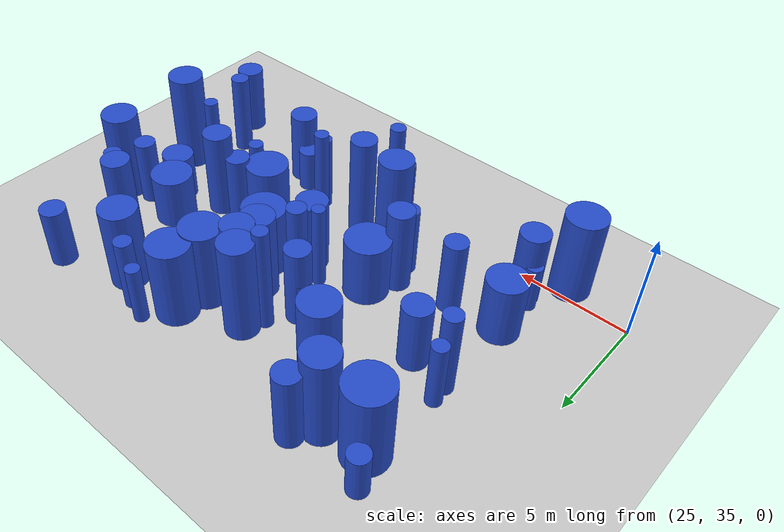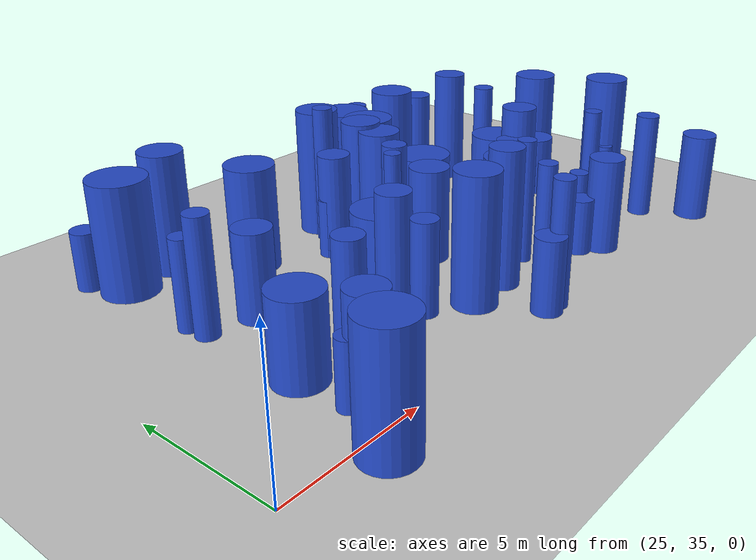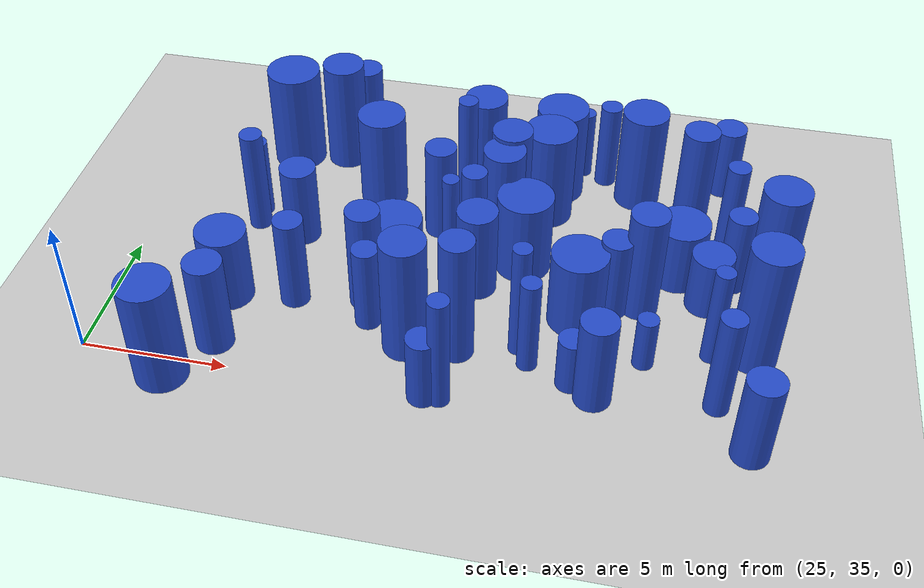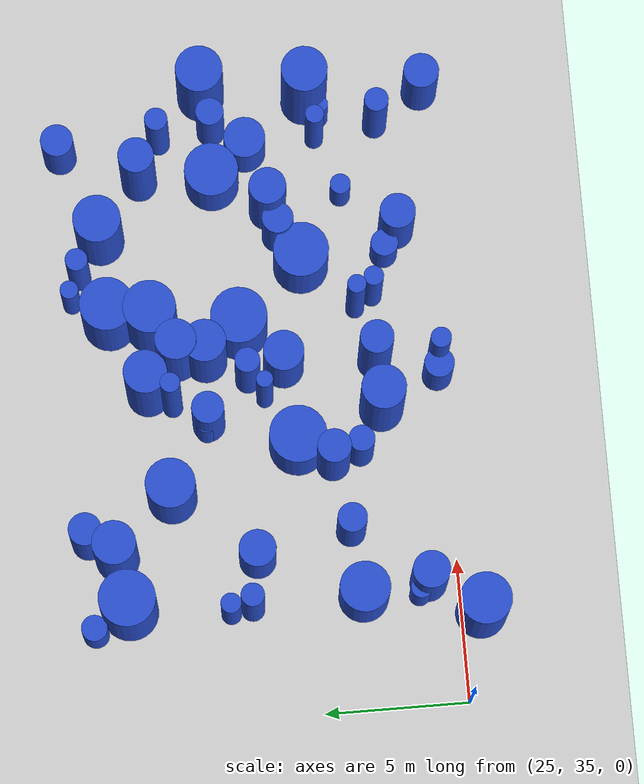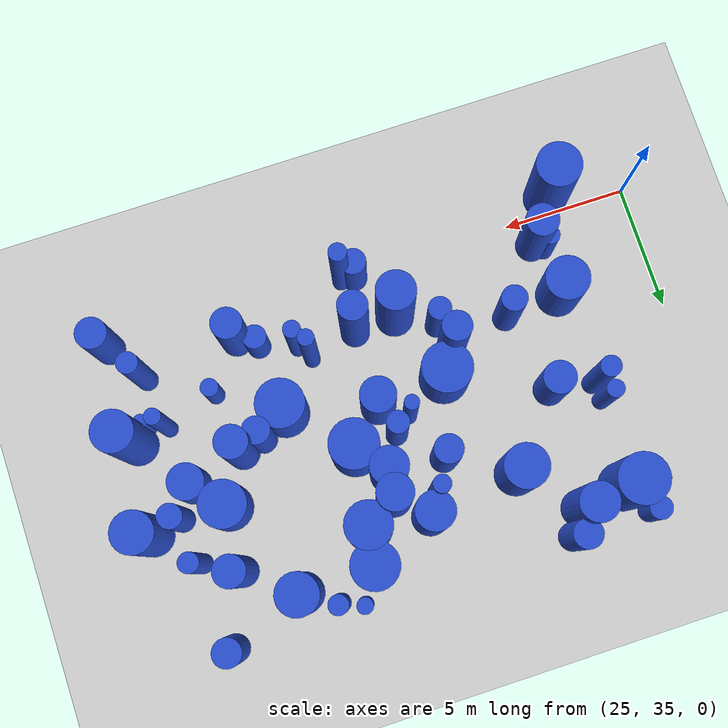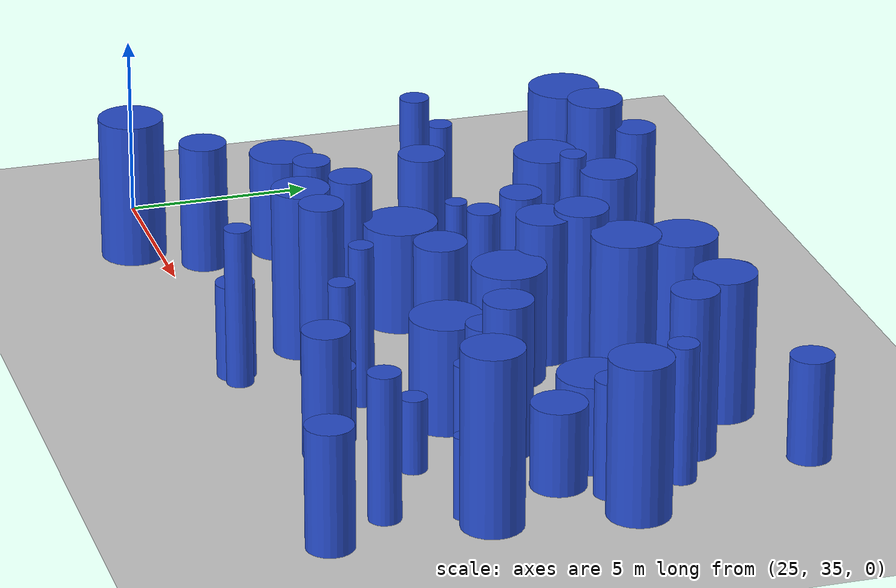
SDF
<sdf version="1.6">
 <world name="default">
  <model name="ground_plane">
   <static>1</static>
   <link name="link">
    <collision name="collision">
     <geometry><plane><normal>0 0 1</normal><size>100 100</size></plane></geometry>
     <surface><friction><ode><mu>100</mu><mu2>50</mu2></ode></friction></surface>
    </collision>
    <visual name="visual">
     <cast_shadows>0</cast_shadows>
     <geometry><plane><normal>0 0 1</normal><size>100 100</size></plane></geometry>
     <material>
      <script><uri>file://media/materials/scripts/gazebo.material</uri><name>Gazebo/Grey</name></script>
     </material>
    </visual>
   </link>
  </model>
  <model name="16">
   <static>0</static>
   <link name="link">
    <inertial>
     <mass>2</mass>
     <inertia><ixx>1.97388</ixx><ixy>0</ixy><ixz>0</ixz><iyy>1.97388</iyy><iyz>0</iyz><izz>0.383371</izz></inertia>
    </inertial>
    <collision name="collision">
     <geometry><cylinder><length>3.27004</length><radius>0.619169</radius></cylinder></geometry>
     <surface><contact><collide_without_contact>1</collide_without_contact></contact></surface>
    </collision>
    <visual name="visual">
     <geometry><cylinder><length>3.27004</length><radius>0.619169</radius></cylinder></geometry>
     <material>
      <script><uri>file://media/materials/scripts/gazebo.material</uri><name>Gazebo/Blue</name></script>
     </material>
    </visual>
    <gravity>0</gravity>
   </link>
   <pose>46.7633 34.854 1.63502 0 -0 0</pose>
  </model>
  <model name="33">
   <static>0</static>
   <link name="link">
    <inertial>
     <mass>2</mass>
     <inertia><ixx>3.32594</ixx><ixy>0</ixy><ixz>0</ixz><iyy>3.32594</iyy><iyz>0</iyz><izz>0.675286</izz></inertia>
    </inertial>
    <collision name="collision">
     <geometry><cylinder><length>4.23436</length><radius>0.821758</radius></cylinder></geometry>
     <surface><contact><collide_without_contact>1</collide_without_contact></contact></surface>
    </collision>
    <visual name="visual">
     <geometry><cylinder><length>4.23436</length><radius>0.821758</radius></cylinder></geometry>
     <material>
      <script><uri>file://media/materials/scripts/gazebo.material</uri><name>Gazebo/Blue</name></script>
     </material>
    </visual>
    <gravity>0</gravity>
   </link>
   <pose>47.2032 42.5605 2.11718 0 -0 0</pose>
  </model>
  <model name="44">
   <static>0</static>
   <link name="link">
    <inertial>
     <mass>2</mass>
     <inertia><ixx>4.17462</ixx><ixy>0</ixy><ixz>0</ixz><iyy>4.17462</iyy><iyz>0</iyz><izz>0.119229</izz></inertia>
    </inertial>
    <collision name="collision">
     <geometry><cylinder><length>4.96891</length><radius>0.345295</radius></cylinder></geometry>
     <surface><contact><collide_without_contact>1</collide_without_contact></contact></surface>
    </collision>
    <visual name="visual">
     <geometry><cylinder><length>4.96891</length><radius>0.345295</radius></cylinder></geometry>
     <material>
      <script><uri>file://media/materials/scripts/gazebo.material</uri><name>Gazebo/Blue</name></script>
     </material>
    </visual>
    <gravity>0</gravity>
   </link>
   <pose>36.1613 44.4005 2.48445 0 -0 0</pose>
  </model>
  <model name="56">
   <static>0</static>
   <link name="link">
    <inertial>
     <mass>2</mass>
     <inertia>
      <ixx>0.820719</ixx>
      <ixy>0</ixy>
      <ixz>0</ixz>
      <iyy>0.820719</iyy>
      <iyz>0</iyz>
      <izz>0.154265</izz>
     </inertia>
    </inertial>
    <collision name="collision">
     <geometry><cylinder><length>2.11223</length><radius>0.392766</radius></cylinder></geometry>
     <surface><contact><collide_without_contact>1</collide_without_contact></contact></surface>
    </collision>
    <visual name="visual">
     <geometry><cylinder><length>2.11223</length><radius>0.392766</radius></cylinder></geometry>
     <material>
      <script><uri>file://media/materials/scripts/gazebo.material</uri><name>Gazebo/Blue</name></script>
     </material>
    </visual>
    <gravity>0</gravity>
   </link>
   <pose>35.2204 43.2712 1.05612 0 -0 0</pose>
  </model>
  <model name="57">
   <static>0</static>
   <link name="link">
    <inertial>
     <mass>2</mass>
     <inertia><ixx>1.80639</ixx><ixy>0</ixy><ixz>0</ixz><iyy>1.80639</iyy><iyz>0</iyz><izz>0.301855</izz></inertia>
    </inertial>
    <collision name="collision">
     <geometry><cylinder><length>3.15163</length><radius>0.549413</radius></cylinder></geometry>
     <surface><contact><collide_without_contact>1</collide_without_contact></contact></surface>
    </collision>
    <visual name="visual">
     <geometry><cylinder><length>3.15163</length><radius>0.549413</radius></cylinder></geometry>
     <material>
      <script><uri>file://media/materials/scripts/gazebo.material</uri><name>Gazebo/Blue</name></script>
     </material>
    </visual>
    <gravity>0</gravity>
   </link>
   <pose>41.9771 40.2594 1.57581 0 -0 0</pose>
  </model>
  <model name="69">
   <static>0</static>
   <link name="link">
    <inertial>
     <mass>2</mass>
     <inertia><ixx>1.84567</ixx><ixy>0</ixy><ixz>0</ixz><iyy>1.84567</iyy><iyz>0</iyz><izz>0.999192</izz></inertia>
    </inertial>
    <collision name="collision">
     <geometry><cylinder><length>2.8419</length><radius>0.999596</radius></cylinder></geometry>
     <surface><contact><collide_without_contact>1</collide_without_contact></contact></surface>
    </collision>
    <visual name="visual">
     <geometry><cylinder><length>2.8419</length><radius>0.999596</radius></cylinder></geometry>
     <material>
      <script><uri>file://media/materials/scripts/gazebo.material</uri><name>Gazebo/Blue</name></script>
     </material>
    </visual>
    <gravity>0</gravity>
   </link>
   <pose>34.4167 40.1677 1.42095 0 -0 0</pose>
  </model>
  <model name="70">
   <static>0</static>
   <link name="link">
    <inertial>
     <mass>2</mass>
     <inertia><ixx>3.11179</ixx><ixy>0</ixy><ixz>0</ixz><iyy>3.11179</iyy><iyz>0</iyz><izz>0.421659</izz></inertia>
    </inertial>
    <collision name="collision">
     <geometry><cylinder><length>4.17202</length><radius>0.649353</radius></cylinder></geometry>
     <surface><contact><collide_without_contact>1</collide_without_contact></contact></surface>
    </collision>
    <visual name="visual">
     <geometry><cylinder><length>4.17202</length><radius>0.649353</radius></cylinder></geometry>
     <material>
      <script><uri>file://media/materials/scripts/gazebo.material</uri><name>Gazebo/Blue</name></script>
     </material>
    </visual>
    <gravity>0</gravity>
   </link>
   <pose>42.8961 40.535 2.08601 0 -0 0</pose>
  </model>
  <model name="91">
   <static>0</static>
   <link name="link">
    <inertial>
     <mass>2</mass>
     <inertia><ixx>3.82607</ixx><ixy>0</ixy><ixz>0</ixz><iyy>3.82607</iyy><iyz>0</iyz><izz>0.596491</izz></inertia>
    </inertial>
    <collision name="collision">
     <geometry><cylinder><length>4.60076</length><radius>0.772328</radius></cylinder></geometry>
     <surface><contact><collide_without_contact>1</collide_without_contact></contact></surface>
    </collision>
    <visual name="visual">
     <geometry><cylinder><length>4.60076</length><radius>0.772328</radius></cylinder></geometry>
     <material>
      <script><uri>file://media/materials/scripts/gazebo.material</uri><name>Gazebo/Blue</name></script>
     </material>
    </visual>
    <gravity>0</gravity>
   </link>
   <pose>35.4947 37.1578 2.30038 0 -0 0</pose>
  </model>
  <model name="101">
   <static>0</static>
   <link name="link">
    <inertial>
     <mass>2</mass>
     <inertia><ixx>2.01847</ixx><ixy>0</ixy><ixz>0</ixz><iyy>2.01847</iyy><iyz>0</iyz><izz>0.154178</izz></inertia>
    </inertial>
    <collision name="collision">
     <geometry><cylinder><length>3.41296</length><radius>0.392655</radius></cylinder></geometry>
     <surface><contact><collide_without_contact>1</collide_without_contact></contact></surface>
    </collision>
    <visual name="visual">
     <geometry><cylinder><length>3.41296</length><radius>0.392655</radius></cylinder></geometry>
     <material>
      <script><uri>file://media/materials/scripts/gazebo.material</uri><name>Gazebo/Blue</name></script>
     </material>
    </visual>
    <gravity>0</gravity>
   </link>
   <pose>41.0047 47.2972 1.70648 0 -0 0</pose>
  </model>
  <model name="139">
   <static>0</static>
   <link name="link">
    <inertial>
     <mass>2</mass>
     <inertia><ixx>1.67274</ixx><ixy>0</ixy><ixz>0</ixz><iyy>1.67274</iyy><iyz>0</iyz><izz>0.124676</izz></inertia>
    </inertial>
    <collision name="collision">
     <geometry><cylinder><length>3.10844</length><radius>0.353094</radius></cylinder></geometry>
     <surface><contact><collide_without_contact>1</collide_without_contact></contact></surface>
    </collision>
    <visual name="visual">
     <geometry><cylinder><length>3.10844</length><radius>0.353094</radius></cylinder></geometry>
     <material>
      <script><uri>file://media/materials/scripts/gazebo.material</uri><name>Gazebo/Blue</name></script>
     </material>
    </visual>
    <gravity>0</gravity>
   </link>
   <pose>28.732 42.9388 1.55422 0 -0 0</pose>
  </model>
  <model name="157">
   <static>0</static>
   <link name="link">
    <inertial>
     <mass>2</mass>
     <inertia><ixx>2.20597</ixx><ixy>0</ixy><ixz>0</ixz><iyy>2.20597</iyy><iyz>0</iyz><izz>0.263443</izz></inertia>
    </inertial>
    <collision name="collision">
     <geometry><cylinder><length>3.52782</length><radius>0.513267</radius></cylinder></geometry>
     <surface><contact><collide_without_contact>1</collide_without_contact></contact></surface>
    </collision>
    <visual name="visual">
     <geometry><cylinder><length>3.52782</length><radius>0.513267</radius></cylinder></geometry>
     <material>
      <script><uri>file://media/materials/scripts/gazebo.material</uri><name>Gazebo/Blue</name></script>
     </material>
    </visual>
    <gravity>0</gravity>
   </link>
   <pose>31.2714 38.576 1.76391 0 -0 0</pose>
  </model>
  <model name="164">
   <static>0</static>
   <link name="link">
    <inertial>
     <mass>2</mass>
     <inertia>
      <ixx>0.892285</ixx>
      <ixy>0</ixy>
      <ixz>0</ixz>
      <iyy>0.892285</iyy>
      <iyz>0</iyz>
      <izz>0.135606</izz>
     </inertia>
    </inertial>
    <collision name="collision">
     <geometry><cylinder><length>2.22416</length><radius>0.368248</radius></cylinder></geometry>
     <surface><contact><collide_without_contact>1</collide_without_contact></contact></surface>
    </collision>
    <visual name="visual">
     <geometry><cylinder><length>2.22416</length><radius>0.368248</radius></cylinder></geometry>
     <material>
      <script><uri>file://media/materials/scripts/gazebo.material</uri><name>Gazebo/Blue</name></script>
     </material>
    </visual>
    <gravity>0</gravity>
   </link>
   <pose>28.8637 36.3832 1.11208 0 -0 0</pose>
  </model>
  <model name="167">
   <static>0</static>
   <link name="link">
    <inertial>
     <mass>2</mass>
     <inertia><ixx>2.17863</ixx><ixy>0</ixy><ixz>0</ixz><iyy>2.17863</iyy><iyz>0</iyz><izz>0.500436</izz></inertia>
    </inertial>
    <collision name="collision">
     <geometry><cylinder><length>3.40154</length><radius>0.707415</radius></cylinder></geometry>
     <surface><contact><collide_without_contact>1</collide_without_contact></contact></surface>
    </collision>
    <visual name="visual">
     <geometry><cylinder><length>3.40154</length><radius>0.707415</radius></cylinder></geometry>
     <material>
      <script><uri>file://media/materials/scripts/gazebo.material</uri><name>Gazebo/Blue</name></script>
     </material>
    </visual>
    <gravity>0</gravity>
   </link>
   <pose>37.2531 40.4364 1.70077 0 -0 0</pose>
  </model>
  <model name="168">
   <static>0</static>
   <link name="link">
    <inertial>
     <mass>2</mass>
     <inertia><ixx>2.95687</ixx><ixy>0</ixy><ixz>0</ixz><iyy>2.95687</iyy><iyz>0</iyz><izz>0.556432</izz></inertia>
    </inertial>
    <collision name="collision">
     <geometry><cylinder><length>4.00898</length><radius>0.745944</radius></cylinder></geometry>
     <surface><contact><collide_without_contact>1</collide_without_contact></contact></surface>
    </collision>
    <visual name="visual">
     <geometry><cylinder><length>4.00898</length><radius>0.745944</radius></cylinder></geometry>
     <material>
      <script><uri>file://media/materials/scripts/gazebo.material</uri><name>Gazebo/Blue</name></script>
     </material>
    </visual>
    <gravity>0</gravity>
   </link>
   <pose>37.7024 43.1218 2.00449 0 -0 0</pose>
  </model>
  <model name="171">
   <static>0</static>
   <link name="link">
    <inertial>
     <mass>2</mass>
     <inertia>
      <ixx>2.71791</ixx>
      <ixy>0</ixy>
      <ixz>0</ixz>
      <iyy>2.71791</iyy>
      <iyz>0</iyz>
      <izz>0.0859131</izz>
     </inertia>
    </inertial>
    <collision name="collision">
     <geometry><cylinder><length>4.00621</length><radius>0.293109</radius></cylinder></geometry>
     <surface><contact><collide_without_contact>1</collide_without_contact></contact></surface>
    </collision>
    <visual name="visual">
     <geometry><cylinder><length>4.00621</length><radius>0.293109</radius></cylinder></geometry>
     <material>
      <script><uri>file://media/materials/scripts/gazebo.material</uri><name>Gazebo/Blue</name></script>
     </material>
    </visual>
    <gravity>0</gravity>
   </link>
   <pose>36.199 41.1788 2.0031 0 -0 0</pose>
  </model>
  <model name="176">
   <static>0</static>
   <link name="link">
    <inertial>
     <mass>2</mass>
     <inertia><ixx>4.07604</ixx><ixy>0</ixy><ixz>0</ixz><iyy>4.07604</iyy><iyz>0</iyz><izz>0.341862</izz></inertia>
    </inertial>
    <collision name="collision">
     <geometry><cylinder><length>4.84052</length><radius>0.58469</radius></cylinder></geometry>
     <surface><contact><collide_without_contact>1</collide_without_contact></contact></surface>
    </collision>
    <visual name="visual">
     <geometry><cylinder><length>4.84052</length><radius>0.58469</radius></cylinder></geometry>
     <material>
      <script><uri>file://media/materials/scripts/gazebo.material</uri><name>Gazebo/Blue</name></script>
     </material>
    </visual>
    <gravity>0</gravity>
   </link>
   <pose>37.1938 37.2575 2.42026 0 -0 0</pose>
  </model>
  <model name="194">
   <static>0</static>
   <link name="link">
    <inertial>
     <mass>2</mass>
     <inertia><ixx>2.29737</ixx><ixy>0</ixy><ixz>0</ixz><iyy>2.29737</iyy><iyz>0</iyz><izz>0.327553</izz></inertia>
    </inertial>
    <collision name="collision">
     <geometry><cylinder><length>3.57792</length><radius>0.572323</radius></cylinder></geometry>
     <surface><contact><collide_without_contact>1</collide_without_contact></contact></surface>
    </collision>
    <visual name="visual">
     <geometry><cylinder><length>3.57792</length><radius>0.572323</radius></cylinder></geometry>
     <material>
      <script><uri>file://media/materials/scripts/gazebo.material</uri><name>Gazebo/Blue</name></script>
     </material>
    </visual>
    <gravity>0</gravity>
   </link>
   <pose>31.5987 47.6939 1.78896 0 -0 0</pose>
  </model>
  <model name="202">
   <static>0</static>
   <link name="link">
    <inertial>
     <mass>2</mass>
     <inertia><ixx>3.3605</ixx><ixy>0</ixy><ixz>0</ixz><iyy>3.3605</iyy><iyz>0</iyz><izz>0.579654</izz></inertia>
    </inertial>
    <collision name="collision">
     <geometry><cylinder><length>4.29233</length><radius>0.76135</radius></cylinder></geometry>
     <surface><contact><collide_without_contact>1</collide_without_contact></contact></surface>
    </collision>
    <visual name="visual">
     <geometry><cylinder><length>4.29233</length><radius>0.76135</radius></cylinder></geometry>
     <material>
      <script><uri>file://media/materials/scripts/gazebo.material</uri><name>Gazebo/Blue</name></script>
     </material>
    </visual>
    <gravity>0</gravity>
   </link>
   <pose>30.9537 46.7301 2.14616 0 -0 0</pose>
  </model>
  <model name="210">
   <static>0</static>
   <link name="link">
    <inertial>
     <mass>2</mass>
     <inertia>
      <ixx>0.800306</ixx>
      <ixy>0</ixy>
      <ixz>0</ixz>
      <iyy>0.800306</iyy>
      <iyz>0</iyz>
      <izz>0.228553</izz>
     </inertia>
    </inertial>
    <collision name="collision">
     <geometry><cylinder><length>2.02884</length><radius>0.478072</radius></cylinder></geometry>
     <surface><contact><collide_without_contact>1</collide_without_contact></contact></surface>
    </collision>
    <visual name="visual">
     <geometry><cylinder><length>2.02884</length><radius>0.478072</radius></cylinder></geometry>
     <material>
      <script><uri>file://media/materials/scripts/gazebo.material</uri><name>Gazebo/Blue</name></script>
     </material>
    </visual>
    <gravity>0</gravity>
   </link>
   <pose>41.036 36.6052 1.01442 0 -0 0</pose>
  </model>
  <model name="224">
   <static>0</static>
   <link name="link">
    <inertial>
     <mass>2</mass>
     <inertia><ixx>3.32048</ixx><ixy>0</ixy><ixz>0</ixz><iyy>3.32048</iyy><iyz>0</iyz><izz>0.105531</izz></inertia>
    </inertial>
    <collision name="collision">
     <geometry><cylinder><length>4.4279</length><radius>0.324856</radius></cylinder></geometry>
     <surface><contact><collide_without_contact>1</collide_without_contact></contact></surface>
    </collision>
    <visual name="visual">
     <geometry><cylinder><length>4.4279</length><radius>0.324856</radius></cylinder></geometry>
     <material>
      <script><uri>file://media/materials/scripts/gazebo.material</uri><name>Gazebo/Blue</name></script>
     </material>
    </visual>
    <gravity>0</gravity>
   </link>
   <pose>39.162 37.7705 2.21395 0 -0 0</pose>
  </model>
  <model name="225">
   <static>0</static>
   <link name="link">
    <inertial>
     <mass>2</mass>
     <inertia><ixx>1.9256</ixx><ixy>0</ixy><ixz>0</ixz><iyy>1.9256</iyy><iyz>0</iyz><izz>0.930774</izz></inertia>
    </inertial>
    <collision name="collision">
     <geometry><cylinder><length>2.95994</length><radius>0.964766</radius></cylinder></geometry>
     <surface><contact><collide_without_contact>1</collide_without_contact></contact></surface>
    </collision>
    <visual name="visual">
     <geometry><cylinder><length>2.95994</length><radius>0.964766</radius></cylinder></geometry>
     <material>
      <script><uri>file://media/materials/scripts/gazebo.material</uri><name>Gazebo/Blue</name></script>
     </material>
    </visual>
    <gravity>0</gravity>
   </link>
   <pose>40.8355 39.5384 1.47997 0 -0 0</pose>
  </model>
  <model name="226">
   <static>0</static>
   <link name="link">
    <inertial>
     <mass>2</mass>
     <inertia><ixx>3.87629</ixx><ixy>0</ixy><ixz>0</ixz><iyy>3.87629</iyy><iyz>0</iyz><izz>0.569472</izz></inertia>
    </inertial>
    <collision name="collision">
     <geometry><cylinder><length>4.64213</length><radius>0.754633</radius></cylinder></geometry>
     <surface><contact><collide_without_contact>1</collide_without_contact></contact></surface>
    </collision>
    <visual name="visual">
     <geometry><cylinder><length>4.64213</length><radius>0.754633</radius></cylinder></geometry>
     <material>
      <script><uri>file://media/materials/scripts/gazebo.material</uri><name>Gazebo/Blue</name></script>
     </material>
    </visual>
    <gravity>0</gravity>
   </link>
   <pose>36.6684 45.216 2.32106 0 -0 0</pose>
  </model>
  <model name="235">
   <static>0</static>
   <link name="link">
    <inertial>
     <mass>2</mass>
     <inertia><ixx>2.77617</ixx><ixy>0</ixy><ixz>0</ixz><iyy>2.77617</iyy><iyz>0</iyz><izz>0.166217</izz></inertia>
    </inertial>
    <collision name="collision">
     <geometry><cylinder><length>4.01975</length><radius>0.407697</radius></cylinder></geometry>
     <surface><contact><collide_without_contact>1</collide_without_contact></contact></surface>
    </collision>
    <visual name="visual">
     <geometry><cylinder><length>4.01975</length><radius>0.407697</radius></cylinder></geometry>
     <material>
      <script><uri>file://media/materials/scripts/gazebo.material</uri><name>Gazebo/Blue</name></script>
     </material>
    </visual>
    <gravity>0</gravity>
   </link>
   <pose>28.8356 42.183 2.00987 0 -0 0</pose>
  </model>
  <model name="238">
   <static>0</static>
   <link name="link">
    <inertial>
     <mass>2</mass>
     <inertia><ixx>1.75919</ixx><ixy>0</ixy><ixz>0</ixz><iyy>1.75919</iyy><iyz>0</iyz><izz>0.240714</izz></inertia>
    </inertial>
    <collision name="collision">
     <geometry><cylinder><length>3.13576</length><radius>0.490626</radius></cylinder></geometry>
     <surface><contact><collide_without_contact>1</collide_without_contact></contact></surface>
    </collision>
    <visual name="visual">
     <geometry><cylinder><length>3.13576</length><radius>0.490626</radius></cylinder></geometry>
     <material>
      <script><uri>file://media/materials/scripts/gazebo.material</uri><name>Gazebo/Blue</name></script>
     </material>
    </visual>
    <gravity>0</gravity>
   </link>
   <pose>45.9366 42.3071 1.56788 0 -0 0</pose>
  </model>
  <model name="248">
   <static>0</static>
   <link name="link">
    <inertial>
     <mass>2</mass>
     <inertia><ixx>1.27917</ixx><ixy>0</ixy><ixz>0</ixz><iyy>1.27917</iyy><iyz>0</iyz><izz>0.271795</izz></inertia>
    </inertial>
    <collision name="collision">
     <geometry><cylinder><length>2.61909</length><radius>0.521339</radius></cylinder></geometry>
     <surface><contact><collide_without_contact>1</collide_without_contact></contact></surface>
    </collision>
    <visual name="visual">
     <geometry><cylinder><length>2.61909</length><radius>0.521339</radius></cylinder></geometry>
     <material>
      <script><uri>file://media/materials/scripts/gazebo.material</uri><name>Gazebo/Blue</name></script>
     </material>
    </visual>
    <gravity>0</gravity>
   </link>
   <pose>36.5397 35.1037 1.30954 0 -0 0</pose>
  </model>
  <model name="259">
   <static>0</static>
   <link name="link">
    <inertial>
     <mass>2</mass>
     <inertia><ixx>3.12811</ixx><ixy>0</ixy><ixz>0</ixz><iyy>3.12811</iyy><iyz>0</iyz><izz>0.971515</izz></inertia>
    </inertial>
    <collision name="collision">
     <geometry><cylinder><length>3.98172</length><radius>0.985654</radius></cylinder></geometry>
     <surface><contact><collide_without_contact>1</collide_without_contact></contact></surface>
    </collision>
    <visual name="visual">
     <geometry><cylinder><length>3.98172</length><radius>0.985654</radius></cylinder></geometry>
     <material>
      <script><uri>file://media/materials/scripts/gazebo.material</uri><name>Gazebo/Blue</name></script>
     </material>
    </visual>
    <gravity>0</gravity>
   </link>
   <pose>29.0812 46.433 1.99086 0 -0 0</pose>
  </model>
  <model name="275">
   <static>0</static>
   <link name="link">
    <inertial>
     <mass>2</mass>
     <inertia><ixx>1.41632</ixx><ixy>0</ixy><ixz>0</ixz><iyy>1.41632</iyy><iyz>0</iyz><izz>0.892011</izz></inertia>
    </inertial>
    <collision name="collision">
     <geometry><cylinder><length>2.41286</length><radius>0.944463</radius></cylinder></geometry>
     <surface><contact><collide_without_contact>1</collide_without_contact></contact></surface>
    </collision>
    <visual name="visual">
     <geometry><cylinder><length>2.41286</length><radius>0.944463</radius></cylinder></geometry>
     <material>
      <script><uri>file://media/materials/scripts/gazebo.material</uri><name>Gazebo/Blue</name></script>
     </material>
    </visual>
    <gravity>0</gravity>
   </link>
   <pose>44.0452 42.4086 1.20643 0 -0 0</pose>
  </model>
  <model name="289">
   <static>0</static>
   <link name="link">
    <inertial>
     <mass>2</mass>
     <inertia><ixx>2.37996</ixx><ixy>0</ixy><ixz>0</ixz><iyy>2.37996</iyy><iyz>0</iyz><izz>0.161647</izz></inertia>
    </inertial>
    <collision name="collision">
     <geometry><cylinder><length>3.71414</length><radius>0.402054</radius></cylinder></geometry>
     <surface><contact><collide_without_contact>1</collide_without_contact></contact></surface>
    </collision>
    <visual name="visual">
     <geometry><cylinder><length>3.71414</length><radius>0.402054</radius></cylinder></geometry>
     <material>
      <script><uri>file://media/materials/scripts/gazebo.material</uri><name>Gazebo/Blue</name></script>
     </material>
    </visual>
    <gravity>0</gravity>
   </link>
   <pose>45.6722 44.1807 1.85707 0 -0 0</pose>
  </model>
  <model name="291">
   <static>0</static>
   <link name="link">
    <inertial>
     <mass>2</mass>
     <inertia><ixx>2.84102</ixx><ixy>0</ixy><ixz>0</ixz><iyy>2.84102</iyy><iyz>0</iyz><izz>0.848281</izz></inertia>
    </inertial>
    <collision name="collision">
     <geometry><cylinder><length>3.80805</length><radius>0.921022</radius></cylinder></geometry>
     <surface><contact><collide_without_contact>1</collide_without_contact></contact></surface>
    </collision>
    <visual name="visual">
     <geometry><cylinder><length>3.80805</length><radius>0.921022</radius></cylinder></geometry>
     <material>
      <script><uri>file://media/materials/scripts/gazebo.material</uri><name>Gazebo/Blue</name></script>
     </material>
    </visual>
    <gravity>0</gravity>
   </link>
   <pose>39.0799 44.9146 1.90403 0 -0 0</pose>
  </model>
  <model name="308">
   <static>0</static>
   <link name="link">
    <inertial>
     <mass>2</mass>
     <inertia><ixx>1.77629</ixx><ixy>0</ixy><ixz>0</ixz><iyy>1.77629</iyy><iyz>0</iyz><izz>0.769397</izz></inertia>
    </inertial>
    <collision name="collision">
     <geometry><cylinder><length>2.88956</length><radius>0.877153</radius></cylinder></geometry>
     <surface><contact><collide_without_contact>1</collide_without_contact></contact></surface>
    </collision>
    <visual name="visual">
     <geometry><cylinder><length>2.88956</length><radius>0.877153</radius></cylinder></geometry>
     <material>
      <script><uri>file://media/materials/scripts/gazebo.material</uri><name>Gazebo/Blue</name></script>
     </material>
    </visual>
    <gravity>0</gravity>
   </link>
   <pose>28.9558 38.3284 1.44478 0 -0 0</pose>
  </model>
  <model name="310">
   <static>0</static>
   <link name="link">
    <inertial>
     <mass>2</mass>
     <inertia><ixx>2.16416</ixx><ixy>0</ixy><ixz>0</ixz><iyy>2.16416</iyy><iyz>0</iyz><izz>0.384762</izz></inertia>
    </inertial>
    <collision name="collision">
     <geometry><cylinder><length>3.43957</length><radius>0.620292</radius></cylinder></geometry>
     <surface><contact><collide_without_contact>1</collide_without_contact></contact></surface>
    </collision>
    <visual name="visual">
     <geometry><cylinder><length>3.43957</length><radius>0.620292</radius></cylinder></geometry>
     <material>
      <script><uri>file://media/materials/scripts/gazebo.material</uri><name>Gazebo/Blue</name></script>
     </material>
    </visual>
    <gravity>0</gravity>
   </link>
   <pose>41.8162 36.11 1.71979 0 -0 0</pose>
  </model>
  <model name="313">
   <static>0</static>
   <link name="link">
    <inertial>
     <mass>2</mass>
     <inertia><ixx>1.85579</ixx><ixy>0</ixy><ixz>0</ixz><iyy>1.85579</iyy><iyz>0</iyz><izz>0.208952</izz></inertia>
    </inertial>
    <collision name="collision">
     <geometry><cylinder><length>3.24159</length><radius>0.457113</radius></cylinder></geometry>
     <surface><contact><collide_without_contact>1</collide_without_contact></contact></surface>
    </collision>
    <visual name="visual">
     <geometry><cylinder><length>3.24159</length><radius>0.457113</radius></cylinder></geometry>
     <material>
      <script><uri>file://media/materials/scripts/gazebo.material</uri><name>Gazebo/Blue</name></script>
     </material>
    </visual>
    <gravity>0</gravity>
   </link>
   <pose>34.0138 38.0161 1.62079 0 -0 0</pose>
  </model>
  <model name="319">
   <static>0</static>
   <link name="link">
    <inertial>
     <mass>2</mass>
     <inertia><ixx>2.69688</ixx><ixy>0</ixy><ixz>0</ixz><iyy>2.69688</iyy><iyz>0</iyz><izz>0.750014</izz></inertia>
    </inertial>
    <collision name="collision">
     <geometry><cylinder><length>3.73246</length><radius>0.866033</radius></cylinder></geometry>
     <surface><contact><collide_without_contact>1</collide_without_contact></contact></surface>
    </collision>
    <visual name="visual">
     <geometry><cylinder><length>3.73246</length><radius>0.866033</radius></cylinder></geometry>
     <material>
      <script><uri>file://media/materials/scripts/gazebo.material</uri><name>Gazebo/Blue</name></script>
     </material>
    </visual>
    <gravity>0</gravity>
   </link>
   <pose>32.9248 44.6718 1.86623 0 -0 0</pose>
  </model>
  <model name="324">
   <static>0</static>
   <link name="link">
    <inertial>
     <mass>2</mass>
     <inertia><ixx>2.26748</ixx><ixy>0</ixy><ixz>0</ixz><iyy>2.26748</iyy><iyz>0</iyz><izz>0.11979</izz></inertia>
    </inertial>
    <collision name="collision">
     <geometry><cylinder><length>3.63944</length><radius>0.346106</radius></cylinder></geometry>
     <surface><contact><collide_without_contact>1</collide_without_contact></contact></surface>
    </collision>
    <visual name="visual">
     <geometry><cylinder><length>3.63944</length><radius>0.346106</radius></cylinder></geometry>
     <material>
      <script><uri>file://media/materials/scripts/gazebo.material</uri><name>Gazebo/Blue</name></script>
     </material>
    </visual>
    <gravity>0</gravity>
   </link>
   <pose>39.561 37.1393 1.81972 0 -0 0</pose>
  </model>
  <model name="327">
   <static>0</static>
   <link name="link">
    <inertial>
     <mass>2</mass>
     <inertia>
      <ixx>0.737552</ixx>
      <ixy>0</ixy>
      <ixz>0</ixz>
      <iyy>0.737552</iyy>
      <iyz>0</iyz>
      <izz>0.12839</izz>
     </inertia>
    </inertial>
    <collision name="collision">
     <geometry><cylinder><length>2.01001</length><radius>0.358315</radius></cylinder></geometry>
     <surface><contact><collide_without_contact>1</collide_without_contact></contact></surface>
    </collision>
    <visual name="visual">
     <geometry><cylinder><length>2.01001</length><radius>0.358315</radius></cylinder></geometry>
     <material>
      <script><uri>file://media/materials/scripts/gazebo.material</uri><name>Gazebo/Blue</name></script>
     </material>
    </visual>
    <gravity>0</gravity>
   </link>
   <pose>43.2574 37.9557 1.00501 0 -0 0</pose>
  </model>
  <model name="350">
   <static>0</static>
   <link name="link">
    <inertial>
     <mass>2</mass>
     <inertia><ixx>3.50925</ixx><ixy>0</ixy><ixz>0</ixz><iyy>3.50925</iyy><iyz>0</iyz><izz>0.386681</izz></inertia>
    </inertial>
    <collision name="collision">
     <geometry><cylinder><length>4.46043</length><radius>0.621837</radius></cylinder></geometry>
     <surface><contact><collide_without_contact>1</collide_without_contact></contact></surface>
    </collision>
    <visual name="visual">
     <geometry><cylinder><length>4.46043</length><radius>0.621837</radius></cylinder></geometry>
     <material>
      <script><uri>file://media/materials/scripts/gazebo.material</uri><name>Gazebo/Blue</name></script>
     </material>
    </visual>
    <gravity>0</gravity>
   </link>
   <pose>44.2751 44.9621 2.23022 0 -0 0</pose>
  </model>
  <model name="358">
   <static>0</static>
   <link name="link">
    <inertial>
     <mass>2</mass>
     <inertia><ixx>3.13431</ixx><ixy>0</ixy><ixz>0</ixz><iyy>3.13431</iyy><iyz>0</iyz><izz>0.515349</izz></inertia>
    </inertial>
    <collision name="collision">
     <geometry><cylinder><length>4.1545</length><radius>0.717878</radius></cylinder></geometry>
     <surface><contact><collide_without_contact>1</collide_without_contact></contact></surface>
    </collision>
    <visual name="visual">
     <geometry><cylinder><length>4.1545</length><radius>0.717878</radius></cylinder></geometry>
     <material>
      <script><uri>file://media/materials/scripts/gazebo.material</uri><name>Gazebo/Blue</name></script>
     </material>
    </visual>
    <gravity>0</gravity>
   </link>
   <pose>37.8047 44.1089 2.07725 0 -0 0</pose>
  </model>
  <model name="361">
   <static>0</static>
   <link name="link">
    <inertial>
     <mass>2</mass>
     <inertia><ixx>2.32619</ixx><ixy>0</ixy><ixz>0</ixz><iyy>2.32619</iyy><iyz>0</iyz><izz>0.422067</izz></inertia>
    </inertial>
    <collision name="collision">
     <geometry><cylinder><length>3.56243</length><radius>0.649667</radius></cylinder></geometry>
     <surface><contact><collide_without_contact>1</collide_without_contact></contact></surface>
    </collision>
    <visual name="visual">
     <geometry><cylinder><length>3.56243</length><radius>0.649667</radius></cylinder></geometry>
     <material>
      <script><uri>file://media/materials/scripts/gazebo.material</uri><name>Gazebo/Blue</name></script>
     </material>
    </visual>
    <gravity>0</gravity>
   </link>
   <pose>29.2693 36.0484 1.78122 0 -0 0</pose>
  </model>
  <model name="391">
   <static>0</static>
   <link name="link">
    <inertial>
     <mass>2</mass>
     <inertia>
      <ixx>0.842144</ixx>
      <ixy>0</ixy>
      <ixz>0</ixz>
      <iyy>0.842144</iyy>
      <iyz>0</iyz>
      <izz>0.0721965</izz>
     </inertia>
    </inertial>
    <collision name="collision">
     <geometry><cylinder><length>2.19915</length><radius>0.268694</radius></cylinder></geometry>
     <surface><contact><collide_without_contact>1</collide_without_contact></contact></surface>
    </collision>
    <visual name="visual">
     <geometry><cylinder><length>2.19915</length><radius>0.268694</radius></cylinder></geometry>
     <material>
      <script><uri>file://media/materials/scripts/gazebo.material</uri><name>Gazebo/Blue</name></script>
     </material>
    </visual>
    <gravity>0</gravity>
   </link>
   <pose>46.1141 38.4155 1.09958 0 -0 0</pose>
  </model>
  <model name="393">
   <static>0</static>
   <link name="link">
    <inertial>
     <mass>2</mass>
     <inertia><ixx>4.12464</ixx><ixy>0</ixy><ixz>0</ixz><iyy>4.12464</iyy><iyz>0</iyz><izz>0.648533</izz></inertia>
    </inertial>
    <collision name="collision">
     <geometry><cylinder><length>4.77517</length><radius>0.805315</radius></cylinder></geometry>
     <surface><contact><collide_without_contact>1</collide_without_contact></contact></surface>
    </collision>
    <visual name="visual">
     <geometry><cylinder><length>4.77517</length><radius>0.805315</radius></cylinder></geometry>
     <material>
      <script><uri>file://media/materials/scripts/gazebo.material</uri><name>Gazebo/Blue</name></script>
     </material>
    </visual>
    <gravity>0</gravity>
   </link>
   <pose>46.7629 38.9437 2.38759 0 -0 0</pose>
  </model>
  <model name="405">
   <static>0</static>
   <link name="link">
    <inertial>
     <mass>2</mass>
     <inertia><ixx>2.46935</ixx><ixy>0</ixy><ixz>0</ixz><iyy>2.46935</iyy><iyz>0</iyz><izz>0.318566</izz></inertia>
    </inertial>
    <collision name="collision">
     <geometry><cylinder><length>3.72296</length><radius>0.564416</radius></cylinder></geometry>
     <surface><contact><collide_without_contact>1</collide_without_contact></contact></surface>
    </collision>
    <visual name="visual">
     <geometry><cylinder><length>3.72296</length><radius>0.564416</radius></cylinder></geometry>
     <material>
      <script><uri>file://media/materials/scripts/gazebo.material</uri><name>Gazebo/Blue</name></script>
     </material>
    </visual>
    <gravity>0</gravity>
   </link>
   <pose>35.4294 43.194 1.86148 0 -0 0</pose>
  </model>
  <model name="412">
   <static>0</static>
   <link name="link">
    <inertial>
     <mass>2</mass>
     <inertia><ixx>1.32302</ixx><ixy>0</ixy><ixz>0</ixz><iyy>1.32302</iyy><iyz>0</iyz><izz>0.102475</izz></inertia>
    </inertial>
    <collision name="collision">
     <geometry><cylinder><length>2.76237</length><radius>0.320118</radius></cylinder></geometry>
     <surface><contact><collide_without_contact>1</collide_without_contact></contact></surface>
    </collision>
    <visual name="visual">
     <geometry><cylinder><length>2.76237</length><radius>0.320118</radius></cylinder></geometry>
     <material>
      <script><uri>file://media/materials/scripts/gazebo.material</uri><name>Gazebo/Blue</name></script>
     </material>
    </visual>
    <gravity>0</gravity>
   </link>
   <pose>40.1084 47.641 1.38119 0 -0 0</pose>
  </model>
  <model name="423">
   <static>0</static>
   <link name="link">
    <inertial>
     <mass>2</mass>
     <inertia><ixx>1.11898</ixx><ixy>0</ixy><ixz>0</ixz><iyy>1.11898</iyy><iyz>0</iyz><izz>0.528716</izz></inertia>
    </inertial>
    <collision name="collision">
     <geometry><cylinder><length>2.26444</length><radius>0.727129</radius></cylinder></geometry>
     <surface><contact><collide_without_contact>1</collide_without_contact></contact></surface>
    </collision>
    <visual name="visual">
     <geometry><cylinder><length>2.26444</length><radius>0.727129</radius></cylinder></geometry>
     <material>
      <script><uri>file://media/materials/scripts/gazebo.material</uri><name>Gazebo/Blue</name></script>
     </material>
    </visual>
    <gravity>0</gravity>
   </link>
   <pose>45.131 41.161 1.13222 0 -0 0</pose>
  </model>
  <model name="430">
   <static>0</static>
   <link name="link">
    <inertial>
     <mass>2</mass>
     <inertia><ixx>2.77865</ixx><ixy>0</ixy><ixz>0</ixz><iyy>2.77865</iyy><iyz>0</iyz><izz>0.191826</izz></inertia>
    </inertial>
    <collision name="collision">
     <geometry><cylinder><length>4.01204</length><radius>0.437979</radius></cylinder></geometry>
     <surface><contact><collide_without_contact>1</collide_without_contact></contact></surface>
    </collision>
    <visual name="visual">
     <geometry><cylinder><length>4.01204</length><radius>0.437979</radius></cylinder></geometry>
     <material>
      <script><uri>file://media/materials/scripts/gazebo.material</uri><name>Gazebo/Blue</name></script>
     </material>
    </visual>
    <gravity>0</gravity>
   </link>
   <pose>36.906 41.7139 2.00602 0 -0 0</pose>
  </model>
  <model name="432">
   <static>0</static>
   <link name="link">
    <inertial>
     <mass>2</mass>
     <inertia>
      <ixx>0.810363</ixx>
      <ixy>0</ixy>
      <ixz>0</ixz>
      <iyy>0.810363</iyy>
      <iyz>0</iyz>
      <izz>0.206387</izz>
     </inertia>
    </inertial>
    <collision name="collision">
     <geometry><cylinder><length>2.05986</length><radius>0.454299</radius></cylinder></geometry>
     <surface><contact><collide_without_contact>1</collide_without_contact></contact></surface>
    </collision>
    <visual name="visual">
     <geometry><cylinder><length>2.05986</length><radius>0.454299</radius></cylinder></geometry>
     <material>
      <script><uri>file://media/materials/scripts/gazebo.material</uri><name>Gazebo/Blue</name></script>
     </material>
    </visual>
    <gravity>0</gravity>
   </link>
   <pose>28.3888 47.6628 1.02993 0 -0 0</pose>
  </model>
  <model name="437">
   <static>0</static>
   <link name="link">
    <inertial>
     <mass>2</mass>
     <inertia><ixx>1.48864</ixx><ixy>0</ixy><ixz>0</ixz><iyy>1.48864</iyy><iyz>0</iyz><izz>0.327314</izz></inertia>
    </inertial>
    <collision name="collision">
     <geometry><cylinder><length>2.81955</length><radius>0.572114</radius></cylinder></geometry>
     <surface><contact><collide_without_contact>1</collide_without_contact></contact></surface>
    </collision>
    <visual name="visual">
     <geometry><cylinder><length>2.81955</length><radius>0.572114</radius></cylinder></geometry>
     <material>
      <script><uri>file://media/materials/scripts/gazebo.material</uri><name>Gazebo/Blue</name></script>
     </material>
    </visual>
    <gravity>0</gravity>
   </link>
   <pose>45.4177 47.6827 1.40978 0 -0 0</pose>
  </model>
  <model name="438">
   <static>0</static>
   <link name="link">
    <inertial>
     <mass>2</mass>
     <inertia><ixx>3.1189</ixx><ixy>0</ixy><ixz>0</ixz><iyy>3.1189</iyy><iyz>0</iyz><izz>0.796262</izz></inertia>
    </inertial>
    <collision name="collision">
     <geometry><cylinder><length>4.04037</length><radius>0.892335</radius></cylinder></geometry>
     <surface><contact><collide_without_contact>1</collide_without_contact></contact></surface>
    </collision>
    <visual name="visual">
     <geometry><cylinder><length>4.04037</length><radius>0.892335</radius></cylinder></geometry>
     <material>
      <script><uri>file://media/materials/scripts/gazebo.material</uri><name>Gazebo/Blue</name></script>
     </material>
    </visual>
    <gravity>0</gravity>
   </link>
   <pose>28.079 34.3237 2.02019 0 -0 0</pose>
  </model>
  <model name="451">
   <static>0</static>
   <link name="link">
    <inertial>
     <mass>2</mass>
     <inertia><ixx>2.78114</ixx><ixy>0</ixy><ixz>0</ixz><iyy>2.78114</iyy><iyz>0</iyz><izz>0.875323</izz></inertia>
    </inertial>
    <collision name="collision">
     <geometry><cylinder><length>3.74978</length><radius>0.935587</radius></cylinder></geometry>
     <surface><contact><collide_without_contact>1</collide_without_contact></contact></surface>
    </collision>
    <visual name="visual">
     <geometry><cylinder><length>3.74978</length><radius>0.935587</radius></cylinder></geometry>
     <material>
      <script><uri>file://media/materials/scripts/gazebo.material</uri><name>Gazebo/Blue</name></script>
     </material>
    </visual>
    <gravity>0</gravity>
   </link>
   <pose>39.3052 46.375 1.87489 0 -0 0</pose>
  </model>
  <model name="457">
   <static>0</static>
   <link name="link">
    <inertial>
     <mass>2</mass>
     <inertia><ixx>2.13348</ixx><ixy>0</ixy><ixz>0</ixz><iyy>2.13348</iyy><iyz>0</iyz><izz>0.96602</izz></inertia>
    </inertial>
    <collision name="collision">
     <geometry><cylinder><length>3.14688</length><radius>0.982863</radius></cylinder></geometry>
     <surface><contact><collide_without_contact>1</collide_without_contact></contact></surface>
    </collision>
    <visual name="visual">
     <geometry><cylinder><length>3.14688</length><radius>0.982863</radius></cylinder></geometry>
     <material>
      <script><uri>file://media/materials/scripts/gazebo.material</uri><name>Gazebo/Blue</name></script>
     </material>
    </visual>
    <gravity>0</gravity>
   </link>
   <pose>38.6644 41.8703 1.57344 0 -0 0</pose>
  </model>
  <model name="468">
   <static>0</static>
   <link name="link">
    <inertial>
     <mass>2</mass>
     <inertia><ixx>2.89196</ixx><ixy>0</ixy><ixz>0</ixz><iyy>2.89196</iyy><iyz>0</iyz><izz>0.694682</izz></inertia>
    </inertial>
    <collision name="collision">
     <geometry><cylinder><length>3.90739</length><radius>0.833476</radius></cylinder></geometry>
     <surface><contact><collide_without_contact>1</collide_without_contact></contact></surface>
    </collision>
    <visual name="visual">
     <geometry><cylinder><length>3.90739</length><radius>0.833476</radius></cylinder></geometry>
     <material>
      <script><uri>file://media/materials/scripts/gazebo.material</uri><name>Gazebo/Blue</name></script>
     </material>
    </visual>
    <gravity>0</gravity>
   </link>
   <pose>42.2826 46.4813 1.95369 0 -0 0</pose>
  </model>
  <model name="476">
   <static>0</static>
   <link name="link">
    <inertial>
     <mass>2</mass>
     <inertia><ixx>2.6963</ixx><ixy>0</ixy><ixz>0</ixz><iyy>2.6963</iyy><iyz>0</iyz><izz>0.178441</izz></inertia>
    </inertial>
    <collision name="collision">
     <geometry><cylinder><length>3.95506</length><radius>0.422423</radius></cylinder></geometry>
     <surface><contact><collide_without_contact>1</collide_without_contact></contact></surface>
    </collision>
    <visual name="visual">
     <geometry><cylinder><length>3.95506</length><radius>0.422423</radius></cylinder></geometry>
     <material>
      <script><uri>file://media/materials/scripts/gazebo.material</uri><name>Gazebo/Blue</name></script>
     </material>
    </visual>
    <gravity>0</gravity>
   </link>
   <pose>45.6857 36.5271 1.97753 0 -0 0</pose>
  </model>
  <model name="484">
   <static>0</static>
   <link name="link">
    <inertial>
     <mass>2</mass>
     <inertia><ixx>2.83518</ixx><ixy>0</ixy><ixz>0</ixz><iyy>2.83518</iyy><iyz>0</iyz><izz>0.344248</izz></inertia>
    </inertial>
    <collision name="collision">
     <geometry><cylinder><length>3.99729</length><radius>0.586726</radius></cylinder></geometry>
     <surface><contact><collide_without_contact>1</collide_without_contact></contact></surface>
    </collision>
    <visual name="visual">
     <geometry><cylinder><length>3.99729</length><radius>0.586726</radius></cylinder></geometry>
     <material>
      <script><uri>file://media/materials/scripts/gazebo.material</uri><name>Gazebo/Blue</name></script>
     </material>
    </visual>
    <gravity>0</gravity>
   </link>
   <pose>33.7065 38.9925 1.99864 0 -0 0</pose>
  </model>
  <model name="486">
   <static>0</static>
   <link name="link">
    <inertial>
     <mass>2</mass>
     <inertia><ixx>1.77068</ixx><ixy>0</ixy><ixz>0</ixz><iyy>1.77068</iyy><iyz>0</iyz><izz>0.418732</izz></inertia>
    </inertial>
    <collision name="collision">
     <geometry><cylinder><length>3.0607</length><radius>0.647095</radius></cylinder></geometry>
     <surface><contact><collide_without_contact>1</collide_without_contact></contact></surface>
    </collision>
    <visual name="visual">
     <geometry><cylinder><length>3.0607</length><radius>0.647095</radius></cylinder></geometry>
     <material>
      <script><uri>file://media/materials/scripts/gazebo.material</uri><name>Gazebo/Blue</name></script>
     </material>
    </visual>
    <gravity>0</gravity>
   </link>
   <pose>30.5499 41.883 1.53035 0 -0 0</pose>
  </model>
  <model name="493">
   <static>0</static>
   <link name="link">
    <inertial>
     <mass>2</mass>
     <inertia><ixx>2.42115</ixx><ixy>0</ixy><ixz>0</ixz><iyy>2.42115</iyy><iyz>0</iyz><izz>0.106432</izz></inertia>
    </inertial>
    <collision name="collision">
     <geometry><cylinder><length>3.76929</length><radius>0.326239</radius></cylinder></geometry>
     <surface><contact><collide_without_contact>1</collide_without_contact></contact></surface>
    </collision>
    <visual name="visual">
     <geometry><cylinder><length>3.76929</length><radius>0.326239</radius></cylinder></geometry>
     <material>
      <script><uri>file://media/materials/scripts/gazebo.material</uri><name>Gazebo/Blue</name></script>
     </material>
    </visual>
    <gravity>0</gravity>
   </link>
   <pose>45.3932 38.6923 1.88465 0 -0 0</pose>
  </model>
  <model name="499">
   <static>0</static>
   <link name="link">
    <inertial>
     <mass>2</mass>
     <inertia><ixx>3.2395</ixx><ixy>0</ixy><ixz>0</ixz><iyy>3.2395</iyy><iyz>0</iyz><izz>0.128026</izz></inertia>
    </inertial>
    <collision name="collision">
     <geometry><cylinder><length>4.36496</length><radius>0.357807</radius></cylinder></geometry>
     <surface><contact><collide_without_contact>1</collide_without_contact></contact></surface>
    </collision>
    <visual name="visual">
     <geometry><cylinder><length>4.36496</length><radius>0.357807</radius></cylinder></geometry>
     <material>
      <script><uri>file://media/materials/scripts/gazebo.material</uri><name>Gazebo/Blue</name></script>
     </material>
    </visual>
    <gravity>0</gravity>
   </link>
   <pose>37.0787 35.063 2.18248 0 -0 0</pose>
  </model>
 </world>
</sdf>
